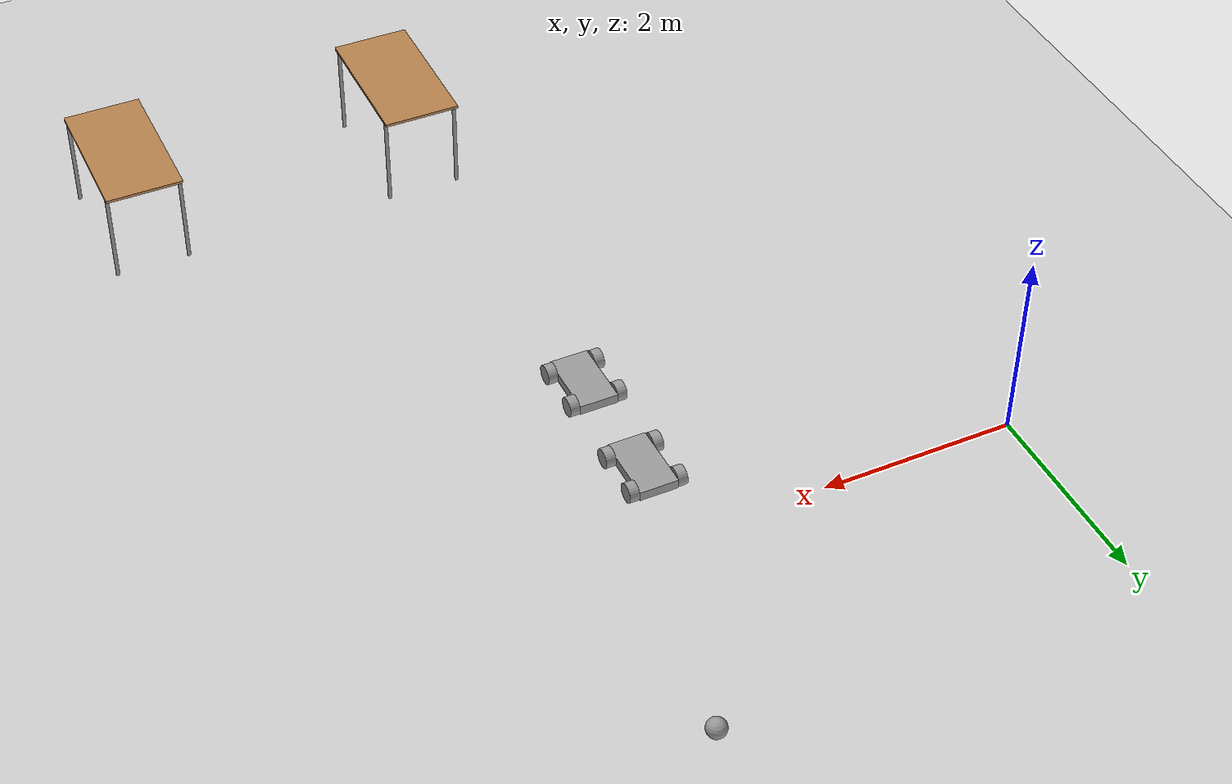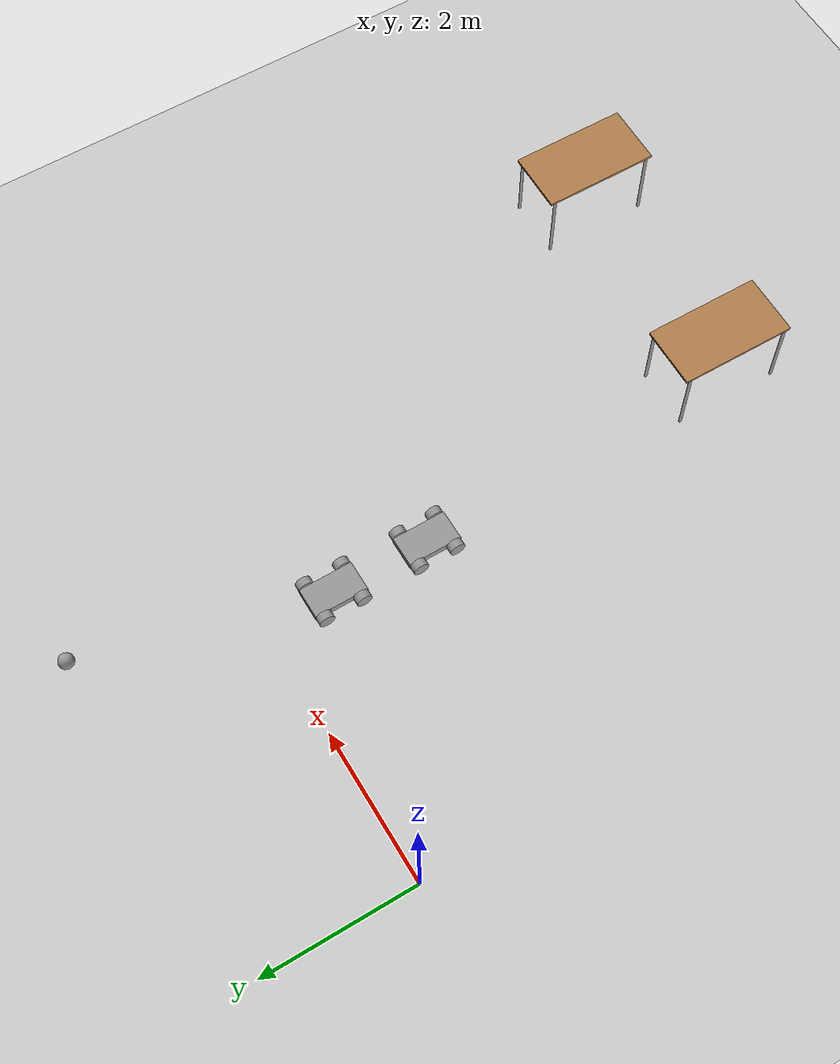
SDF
<sdf version="1.6">
 <world name="default">
  <model name="ground_plane">
   <static>1</static>
   <link name="link">
    <collision name="collision">
     <geometry><plane><normal>0 0 1</normal><size>100 100</size></plane></geometry>
     <surface><friction><ode><mu>100</mu><mu2>50</mu2></ode></friction></surface>
    </collision>
    <visual name="visual">
     <cast_shadows>0</cast_shadows>
     <geometry><plane><normal>0 0 1</normal><size>100 100</size></plane></geometry>
     <material>
      <script><uri>file://media/materials/scripts/gazebo.material</uri><name>Gazebo/Grey</name></script>
     </material>
    </visual>
   </link>
  </model>
  <model name="Robot">
   <link name="link_0">
    <inertial>
     <mass>1</mass>
     <inertia>
      <ixx>0.166667</ixx>
      <ixy>0</ixy>
      <ixz>0</ixz>
      <iyy>0.166667</iyy>
      <iyz>0</iyz>
      <izz>0.166667</izz>
     </inertia>
    </inertial>
    <visual name="visual">
     <geometry><box><size>0.4 0.7 0.1</size></box></geometry>
     <material>
      <lighting>1</lighting>
      <script><uri>file://media/materials/scripts/gazebo.material</uri><name>Gazebo/Grey</name></script>
      <shader type="pixel"><normal_map>__default__</normal_map></shader>
      <ambient>0.3 0.3 0.3 1</ambient>
      <diffuse>0.7 0.7 0.7 1</diffuse>
      <specular>0.01 0.01 0.01 1</specular>
      <emissive>0 0 0 1</emissive>
     </material>
    </visual>
    <collision name="collision">
     <geometry><box><size>0.4 0.7 0.1</size></box></geometry>
     <surface>
      <friction>
       <ode><mu>1</mu><mu2>1</mu2><fdir1>0 0 0</fdir1><slip1>0</slip1><slip2>0</slip2></ode>
       <torsional>
        <coefficient>1</coefficient>
        <patch_radius>0</patch_radius>
        <surface_radius>0</surface_radius>
        <use_patch_radius>1</use_patch_radius>
        <ode><slip>0</slip></ode>
       </torsional>
      </friction>
      <bounce><restitution_coefficient>0</restitution_coefficient><threshold>1e+06</threshold></bounce>
      <contact>
       <collide_without_contact>0</collide_without_contact>
       <collide_without_contact_bitmask>1</collide_without_contact_bitmask>
       <collide_bitmask>1</collide_bitmask>
       <ode>
        <soft_cfm>0</soft_cfm>
        <soft_erp>0.2</soft_erp>
        <kp>1e+13</kp>
        <kd>1</kd>
        <max_vel>0.01</max_vel>
        <min_depth>0</min_depth>
       </ode>
       <bullet>
        <split_impulse>1</split_impulse>
        <split_impulse_penetration_threshold>-0.01</split_impulse_penetration_threshold>
        <soft_cfm>0</soft_cfm>
        <soft_erp>0.2</soft_erp>
        <kp>1e+13</kp>
        <kd>1</kd>
       </bullet>
      </contact>
     </surface>
    </collision>
   </link>
   <link name="link_1">
    <pose>0.25 -0.25 0 0 -0 0</pose>
    <inertial>
     <mass>1</mass>
     <inertia><ixx>0.145833</ixx><ixy>0</ixy><ixz>0</ixz><iyy>0.145833</iyy><iyz>0</iyz><izz>0.125</izz></inertia>
    </inertial>
    <visual name="visual">
     <pose>0 0 0 3.14159 1.57079 3.14159</pose>
     <geometry><cylinder><radius>0.1</radius><length>0.1</length></cylinder></geometry>
     <material>
      <lighting>1</lighting>
      <script><uri>file://media/materials/scripts/gazebo.material</uri><name>Gazebo/Grey</name></script>
      <shader type="pixel"><normal_map>__default__</normal_map></shader>
      <ambient>0.3 0.3 0.3 1</ambient>
      <diffuse>0.7 0.7 0.7 1</diffuse>
      <specular>0.01 0.01 0.01 1</specular>
      <emissive>0 0 0 1</emissive>
     </material>
    </visual>
    <collision name="collision">
     <pose>0 0 0 3.14159 1.57079 3.14159</pose>
     <geometry><cylinder><radius>0.1</radius><length>0.1</length></cylinder></geometry>
     <surface>
      <friction>
       <ode><mu>1</mu><mu2>1</mu2><fdir1>0 0 0</fdir1><slip1>0</slip1><slip2>0</slip2></ode>
       <torsional>
        <coefficient>1</coefficient>
        <patch_radius>0</patch_radius>
        <surface_radius>0</surface_radius>
        <use_patch_radius>1</use_patch_radius>
        <ode><slip>0</slip></ode>
       </torsional>
      </friction>
      <bounce><restitution_coefficient>0</restitution_coefficient><threshold>1e+06</threshold></bounce>
      <contact>
       <collide_without_contact>0</collide_without_contact>
       <collide_without_contact_bitmask>1</collide_without_contact_bitmask>
       <collide_bitmask>1</collide_bitmask>
       <ode>
        <soft_cfm>0</soft_cfm>
        <soft_erp>0.2</soft_erp>
        <kp>1e+13</kp>
        <kd>1</kd>
        <max_vel>0.01</max_vel>
        <min_depth>0</min_depth>
       </ode>
       <bullet>
        <split_impulse>1</split_impulse>
        <split_impulse_penetration_threshold>-0.01</split_impulse_penetration_threshold>
        <soft_cfm>0</soft_cfm>
        <soft_erp>0.2</soft_erp>
        <kp>1e+13</kp>
        <kd>1</kd>
       </bullet>
      </contact>
     </surface>
    </collision>
   </link>
   <link name="link_1_clone">
    <pose>0.25 0.25 0 0 -0 0</pose>
    <inertial>
     <mass>1</mass>
     <inertia><ixx>0.145833</ixx><ixy>0</ixy><ixz>0</ixz><iyy>0.145833</iyy><iyz>0</iyz><izz>0.125</izz></inertia>
    </inertial>
    <visual name="visual">
     <pose>0 0 0 3.14159 1.57079 3.14159</pose>
     <geometry><cylinder><radius>0.1</radius><length>0.1</length></cylinder></geometry>
     <material>
      <lighting>1</lighting>
      <script><uri>file://media/materials/scripts/gazebo.material</uri><name>Gazebo/Grey</name></script>
      <shader type="pixel"><normal_map>__default__</normal_map></shader>
      <ambient>0.3 0.3 0.3 1</ambient>
      <diffuse>0.7 0.7 0.7 1</diffuse>
      <specular>0.01 0.01 0.01 1</specular>
      <emissive>0 0 0 1</emissive>
     </material>
    </visual>
    <collision name="collision">
     <pose>0 0 0 3.14159 1.57079 3.14159</pose>
     <geometry><cylinder><radius>0.1</radius><length>0.1</length></cylinder></geometry>
     <surface>
      <friction>
       <ode><mu>1</mu><mu2>1</mu2><fdir1>0 0 0</fdir1><slip1>0</slip1><slip2>0</slip2></ode>
       <torsional>
        <coefficient>1</coefficient>
        <patch_radius>0</patch_radius>
        <surface_radius>0</surface_radius>
        <use_patch_radius>1</use_patch_radius>
        <ode><slip>0</slip></ode>
       </torsional>
      </friction>
      <bounce><restitution_coefficient>0</restitution_coefficient><threshold>1e+06</threshold></bounce>
      <contact>
       <collide_without_contact>0</collide_without_contact>
       <collide_without_contact_bitmask>1</collide_without_contact_bitmask>
       <collide_bitmask>1</collide_bitmask>
       <ode>
        <soft_cfm>0</soft_cfm>
        <soft_erp>0.2</soft_erp>
        <kp>1e+13</kp>
        <kd>1</kd>
        <max_vel>0.01</max_vel>
        <min_depth>0</min_depth>
       </ode>
       <bullet>
        <split_impulse>1</split_impulse>
        <split_impulse_penetration_threshold>-0.01</split_impulse_penetration_threshold>
        <soft_cfm>0</soft_cfm>
        <soft_erp>0.2</soft_erp>
        <kp>1e+13</kp>
        <kd>1</kd>
       </bullet>
      </contact>
     </surface>
    </collision>
   </link>
   <link name="link_1_clone_0">
    <pose>-0.250001 -0.25 0 0 -0 0</pose>
    <inertial>
     <mass>1</mass>
     <inertia><ixx>0.145833</ixx><ixy>0</ixy><ixz>0</ixz><iyy>0.145833</iyy><iyz>0</iyz><izz>0.125</izz></inertia>
    </inertial>
    <visual name="visual">
     <pose>0 0 0 3.14159 1.57079 3.14159</pose>
     <geometry><cylinder><radius>0.1</radius><length>0.1</length></cylinder></geometry>
     <material>
      <lighting>1</lighting>
      <script><uri>file://media/materials/scripts/gazebo.material</uri><name>Gazebo/Grey</name></script>
      <shader type="pixel"><normal_map>__default__</normal_map></shader>
      <ambient>0.3 0.3 0.3 1</ambient>
      <diffuse>0.7 0.7 0.7 1</diffuse>
      <specular>0.01 0.01 0.01 1</specular>
      <emissive>0 0 0 1</emissive>
     </material>
    </visual>
    <collision name="collision">
     <pose>0 0 0 3.14159 1.57079 3.14159</pose>
     <geometry><cylinder><radius>0.1</radius><length>0.1</length></cylinder></geometry>
     <surface>
      <friction>
       <ode><mu>1</mu><mu2>1</mu2><fdir1>0 0 0</fdir1><slip1>0</slip1><slip2>0</slip2></ode>
       <torsional>
        <coefficient>1</coefficient>
        <patch_radius>0</patch_radius>
        <surface_radius>0</surface_radius>
        <use_patch_radius>1</use_patch_radius>
        <ode><slip>0</slip></ode>
       </torsional>
      </friction>
      <bounce><restitution_coefficient>0</restitution_coefficient><threshold>1e+06</threshold></bounce>
      <contact>
       <collide_without_contact>0</collide_without_contact>
       <collide_without_contact_bitmask>1</collide_without_contact_bitmask>
       <collide_bitmask>1</collide_bitmask>
       <ode>
        <soft_cfm>0</soft_cfm>
        <soft_erp>0.2</soft_erp>
        <kp>1e+13</kp>
        <kd>1</kd>
        <max_vel>0.01</max_vel>
        <min_depth>0</min_depth>
       </ode>
       <bullet>
        <split_impulse>1</split_impulse>
        <split_impulse_penetration_threshold>-0.01</split_impulse_penetration_threshold>
        <soft_cfm>0</soft_cfm>
        <soft_erp>0.2</soft_erp>
        <kp>1e+13</kp>
        <kd>1</kd>
       </bullet>
      </contact>
     </surface>
    </collision>
   </link>
   <link name="link_1_clone_1">
    <pose>-0.250001 0.25 0 0 -0 0</pose>
    <inertial>
     <mass>1</mass>
     <inertia><ixx>0.145833</ixx><ixy>0</ixy><ixz>0</ixz><iyy>0.145833</iyy><iyz>0</iyz><izz>0.125</izz></inertia>
    </inertial>
    <visual name="visual">
     <pose>0 0 0 3.14159 1.57079 3.14159</pose>
     <geometry><cylinder><radius>0.1</radius><length>0.1</length></cylinder></geometry>
     <material>
      <lighting>1</lighting>
      <script><uri>file://media/materials/scripts/gazebo.material</uri><name>Gazebo/Grey</name></script>
      <shader type="pixel"><normal_map>__default__</normal_map></shader>
      <ambient>0.3 0.3 0.3 1</ambient>
      <diffuse>0.7 0.7 0.7 1</diffuse>
      <specular>0.01 0.01 0.01 1</specular>
      <emissive>0 0 0 1</emissive>
     </material>
    </visual>
    <collision name="collision">
     <pose>0 0 0 3.14159 1.57079 3.14159</pose>
     <geometry><cylinder><radius>0.1</radius><length>0.1</length></cylinder></geometry>
     <surface>
      <friction>
       <ode><mu>1</mu><mu2>1</mu2><fdir1>0 0 0</fdir1><slip1>0</slip1><slip2>0</slip2></ode>
       <torsional>
        <coefficient>1</coefficient>
        <patch_radius>0</patch_radius>
        <surface_radius>0</surface_radius>
        <use_patch_radius>1</use_patch_radius>
        <ode><slip>0</slip></ode>
       </torsional>
      </friction>
      <bounce><restitution_coefficient>0</restitution_coefficient><threshold>1e+06</threshold></bounce>
      <contact>
       <collide_without_contact>0</collide_without_contact>
       <collide_without_contact_bitmask>1</collide_without_contact_bitmask>
       <collide_bitmask>1</collide_bitmask>
       <ode>
        <soft_cfm>0</soft_cfm>
        <soft_erp>0.2</soft_erp>
        <kp>1e+13</kp>
        <kd>1</kd>
        <max_vel>0.01</max_vel>
        <min_depth>0</min_depth>
       </ode>
       <bullet>
        <split_impulse>1</split_impulse>
        <split_impulse_penetration_threshold>-0.01</split_impulse_penetration_threshold>
        <soft_cfm>0</soft_cfm>
        <soft_erp>0.2</soft_erp>
        <kp>1e+13</kp>
        <kd>1</kd>
       </bullet>
      </contact>
     </surface>
    </collision>
   </link>
   <joint name="link_0_JOINT_0" type="revolute">
    <parent>link_0</parent>
    <child>link_1_clone</child>
    <axis>
     <xyz>1 0 0</xyz>
     <use_parent_model_frame>0</use_parent_model_frame>
     <limit>
      <lower>-1.79769e+308</lower>
      <upper>1.79769e+308</upper>
      <effort>-1</effort>
      <velocity>-1</velocity>
     </limit>
     <dynamics>
      <spring_reference>0</spring_reference>
      <spring_stiffness>0</spring_stiffness>
      <damping>0</damping>
     </dynamics>
    </axis>
    <physics>
     <ode><limit><cfm>0</cfm><erp>0.2</erp></limit><suspension><cfm>0</cfm><erp>0.2</erp></suspension></ode>
    </physics>
   </joint>
   <joint name="link_0_JOINT_1" type="revolute">
    <parent>link_0</parent>
    <child>link_1_clone_1</child>
    <axis>
     <xyz>1 0 0</xyz>
     <use_parent_model_frame>0</use_parent_model_frame>
     <limit>
      <lower>-1.79769e+308</lower>
      <upper>1.79769e+308</upper>
      <effort>-1</effort>
      <velocity>-1</velocity>
     </limit>
     <dynamics>
      <spring_reference>0</spring_reference>
      <spring_stiffness>0</spring_stiffness>
      <damping>0</damping>
     </dynamics>
    </axis>
    <physics>
     <ode><limit><cfm>0</cfm><erp>0.2</erp></limit><suspension><cfm>0</cfm><erp>0.2</erp></suspension></ode>
    </physics>
   </joint>
   <joint name="link_0_JOINT_2" type="revolute">
    <parent>link_0</parent>
    <child>link_1</child>
    <axis>
     <xyz>1 0 0</xyz>
     <use_parent_model_frame>0</use_parent_model_frame>
     <limit>
      <lower>-1.79769e+308</lower>
      <upper>1.79769e+308</upper>
      <effort>-1</effort>
      <velocity>-1</velocity>
     </limit>
     <dynamics>
      <spring_reference>0</spring_reference>
      <spring_stiffness>0</spring_stiffness>
      <damping>0</damping>
     </dynamics>
    </axis>
    <physics>
     <ode><limit><cfm>0</cfm><erp>0.2</erp></limit><suspension><cfm>0</cfm><erp>0.2</erp></suspension></ode>
    </physics>
   </joint>
   <joint name="link_0_JOINT_3" type="revolute">
    <parent>link_0</parent>
    <child>link_1_clone_0</child>
    <axis>
     <xyz>1 0 0</xyz>
     <use_parent_model_frame>0</use_parent_model_frame>
     <limit>
      <lower>-1.79769e+308</lower>
      <upper>1.79769e+308</upper>
      <effort>-1</effort>
      <velocity>-1</velocity>
     </limit>
     <dynamics>
      <spring_reference>0</spring_reference>
      <spring_stiffness>0</spring_stiffness>
      <damping>0</damping>
     </dynamics>
    </axis>
    <physics>
     <ode><limit><cfm>0</cfm><erp>0.2</erp></limit><suspension><cfm>0</cfm><erp>0.2</erp></suspension></ode>
    </physics>
   </joint>
   <static>0</static>
   <pose>3.47069 -2.16442 0.099998 1e-05 -0 0.004193</pose>
  </model>
  <model name="table">
   <static>1</static>
   <link name="link">
    <collision name="surface">
     <pose>0 0 1 0 -0 0</pose>
     <geometry><box><size>1.5 0.8 0.03</size></box></geometry>
     <surface><friction><ode><mu>0.6</mu><mu2>0.6</mu2></ode></friction></surface>
    </collision>
    <visual name="visual1">
     <pose>0 0 1 0 -0 0</pose>
     <geometry><box><size>1.5 0.8 0.03</size></box></geometry>
     <material>
      <script><uri>file://media/materials/scripts/gazebo.material</uri><name>Gazebo/Wood</name></script>
     </material>
    </visual>
    <collision name="front_left_leg">
     <pose>0.68 0.38 0.5 0 -0 0</pose>
     <geometry><cylinder><radius>0.02</radius><length>1</length></cylinder></geometry>
    </collision>
    <visual name="front_left_leg">
     <pose>0.68 0.38 0.5 0 -0 0</pose>
     <geometry><cylinder><radius>0.02</radius><length>1</length></cylinder></geometry>
     <material>
      <script><uri>file://media/materials/scripts/gazebo.material</uri><name>Gazebo/Grey</name></script>
     </material>
    </visual>
    <collision name="front_right_leg">
     <pose>0.68 -0.38 0.5 0 -0 0</pose>
     <geometry><cylinder><radius>0.02</radius><length>1</length></cylinder></geometry>
    </collision>
    <visual name="front_right_leg">
     <pose>0.68 -0.38 0.5 0 -0 0</pose>
     <geometry><cylinder><radius>0.02</radius><length>1</length></cylinder></geometry>
     <material>
      <script><uri>file://media/materials/scripts/gazebo.material</uri><name>Gazebo/Grey</name></script>
     </material>
    </visual>
    <collision name="back_right_leg">
     <pose>-0.68 -0.38 0.5 0 -0 0</pose>
     <geometry><cylinder><radius>0.02</radius><length>1</length></cylinder></geometry>
    </collision>
    <visual name="back_right_leg">
     <pose>-0.68 -0.38 0.5 0 -0 0</pose>
     <geometry><cylinder><radius>0.02</radius><length>1</length></cylinder></geometry>
     <material>
      <script><uri>file://media/materials/scripts/gazebo.material</uri><name>Gazebo/Grey</name></script>
     </material>
    </visual>
    <collision name="back_left_leg">
     <pose>-0.68 0.38 0.5 0 -0 0</pose>
     <geometry><cylinder><radius>0.02</radius><length>1</length></cylinder></geometry>
    </collision>
    <visual name="back_left_leg">
     <pose>-0.68 0.38 0.5 0 -0 0</pose>
     <geometry><cylinder><radius>0.02</radius><length>1</length></cylinder></geometry>
     <material>
      <script><uri>file://media/materials/scripts/gazebo.material</uri><name>Gazebo/Grey</name></script>
     </material>
    </visual>
   </link>
   <pose>3.67774 -6.38661 0 0 -0 1.56186</pose>
  </model>
  <model name="table_clone_1">
   <static>1</static>
   <link name="link">
    <collision name="surface">
     <pose>0 0 1 0 -0 0</pose>
     <geometry><box><size>1.5 0.8 0.03</size></box></geometry>
     <surface><friction><ode><mu>0.6</mu><mu2>0.6</mu2></ode></friction></surface>
    </collision>
    <visual name="visual1">
     <pose>0 0 1 0 -0 0</pose>
     <geometry><box><size>1.5 0.8 0.03</size></box></geometry>
     <material>
      <script><uri>file://media/materials/scripts/gazebo.material</uri><name>Gazebo/Wood</name></script>
     </material>
    </visual>
    <collision name="front_left_leg">
     <pose>0.68 0.38 0.5 0 -0 0</pose>
     <geometry><cylinder><radius>0.02</radius><length>1</length></cylinder></geometry>
    </collision>
    <visual name="front_left_leg">
     <pose>0.68 0.38 0.5 0 -0 0</pose>
     <geometry><cylinder><radius>0.02</radius><length>1</length></cylinder></geometry>
     <material>
      <script><uri>file://media/materials/scripts/gazebo.material</uri><name>Gazebo/Grey</name></script>
     </material>
    </visual>
    <collision name="front_right_leg">
     <pose>0.68 -0.38 0.5 0 -0 0</pose>
     <geometry><cylinder><radius>0.02</radius><length>1</length></cylinder></geometry>
    </collision>
    <visual name="front_right_leg">
     <pose>0.68 -0.38 0.5 0 -0 0</pose>
     <geometry><cylinder><radius>0.02</radius><length>1</length></cylinder></geometry>
     <material>
      <script><uri>file://media/materials/scripts/gazebo.material</uri><name>Gazebo/Grey</name></script>
     </material>
    </visual>
    <collision name="back_right_leg">
     <pose>-0.68 -0.38 0.5 0 -0 0</pose>
     <geometry><cylinder><radius>0.02</radius><length>1</length></cylinder></geometry>
    </collision>
    <visual name="back_right_leg">
     <pose>-0.68 -0.38 0.5 0 -0 0</pose>
     <geometry><cylinder><radius>0.02</radius><length>1</length></cylinder></geometry>
     <material>
      <script><uri>file://media/materials/scripts/gazebo.material</uri><name>Gazebo/Grey</name></script>
     </material>
    </visual>
    <collision name="back_left_leg">
     <pose>-0.68 0.38 0.5 0 -0 0</pose>
     <geometry><cylinder><radius>0.02</radius><length>1</length></cylinder></geometry>
    </collision>
    <visual name="back_left_leg">
     <pose>-0.68 0.38 0.5 0 -0 0</pose>
     <geometry><cylinder><radius>0.02</radius><length>1</length></cylinder></geometry>
     <material>
      <script><uri>file://media/materials/scripts/gazebo.material</uri><name>Gazebo/Grey</name></script>
     </material>
    </visual>
   </link>
   <pose>6.66638 -6.40439 0 0 -0 1.56186</pose>
  </model>
  <model name="Robot_clone">
   <link name="link_0">
    <inertial>
     <mass>1</mass>
     <inertia>
      <ixx>0.166667</ixx>
      <ixy>0</ixy>
      <ixz>0</ixz>
      <iyy>0.166667</iyy>
      <iyz>0</iyz>
      <izz>0.166667</izz>
     </inertia>
    </inertial>
    <visual name="visual">
     <geometry><box><size>0.4 0.7 0.1</size></box></geometry>
     <material>
      <lighting>1</lighting>
      <script><uri>file://media/materials/scripts/gazebo.material</uri><name>Gazebo/Grey</name></script>
      <shader type="pixel"><normal_map>__default__</normal_map></shader>
      <ambient>0.3 0.3 0.3 1</ambient>
      <diffuse>0.7 0.7 0.7 1</diffuse>
      <specular>0.01 0.01 0.01 1</specular>
      <emissive>0 0 0 1</emissive>
     </material>
    </visual>
    <collision name="collision">
     <geometry><box><size>0.4 0.7 0.1</size></box></geometry>
     <surface>
      <friction>
       <ode><mu>1</mu><mu2>1</mu2><fdir1>0 0 0</fdir1><slip1>0</slip1><slip2>0</slip2></ode>
       <torsional>
        <coefficient>1</coefficient>
        <patch_radius>0</patch_radius>
        <surface_radius>0</surface_radius>
        <use_patch_radius>1</use_patch_radius>
        <ode><slip>0</slip></ode>
       </torsional>
      </friction>
      <bounce><restitution_coefficient>0</restitution_coefficient><threshold>1e+06</threshold></bounce>
      <contact>
       <collide_without_contact>0</collide_without_contact>
       <collide_without_contact_bitmask>1</collide_without_contact_bitmask>
       <collide_bitmask>1</collide_bitmask>
       <ode>
        <soft_cfm>0</soft_cfm>
        <soft_erp>0.2</soft_erp>
        <kp>1e+13</kp>
        <kd>1</kd>
        <max_vel>0.01</max_vel>
        <min_depth>0</min_depth>
       </ode>
       <bullet>
        <split_impulse>1</split_impulse>
        <split_impulse_penetration_threshold>-0.01</split_impulse_penetration_threshold>
        <soft_cfm>0</soft_cfm>
        <soft_erp>0.2</soft_erp>
        <kp>1e+13</kp>
        <kd>1</kd>
       </bullet>
      </contact>
     </surface>
    </collision>
   </link>
   <link name="link_1">
    <pose>0.25 -0.25 0 0 -0 0</pose>
    <inertial>
     <mass>1</mass>
     <inertia><ixx>0.145833</ixx><ixy>0</ixy><ixz>0</ixz><iyy>0.145833</iyy><iyz>0</iyz><izz>0.125</izz></inertia>
    </inertial>
    <visual name="visual">
     <pose>0 0 0 3.14159 1.57079 3.14159</pose>
     <geometry><cylinder><radius>0.1</radius><length>0.1</length></cylinder></geometry>
     <material>
      <lighting>1</lighting>
      <script><uri>file://media/materials/scripts/gazebo.material</uri><name>Gazebo/Grey</name></script>
      <shader type="pixel"><normal_map>__default__</normal_map></shader>
      <ambient>0.3 0.3 0.3 1</ambient>
      <diffuse>0.7 0.7 0.7 1</diffuse>
      <specular>0.01 0.01 0.01 1</specular>
      <emissive>0 0 0 1</emissive>
     </material>
    </visual>
    <collision name="collision">
     <pose>0 0 0 3.14159 1.57079 3.14159</pose>
     <geometry><cylinder><radius>0.1</radius><length>0.1</length></cylinder></geometry>
     <surface>
      <friction>
       <ode><mu>1</mu><mu2>1</mu2><fdir1>0 0 0</fdir1><slip1>0</slip1><slip2>0</slip2></ode>
       <torsional>
        <coefficient>1</coefficient>
        <patch_radius>0</patch_radius>
        <surface_radius>0</surface_radius>
        <use_patch_radius>1</use_patch_radius>
        <ode><slip>0</slip></ode>
       </torsional>
      </friction>
      <bounce><restitution_coefficient>0</restitution_coefficient><threshold>1e+06</threshold></bounce>
      <contact>
       <collide_without_contact>0</collide_without_contact>
       <collide_without_contact_bitmask>1</collide_without_contact_bitmask>
       <collide_bitmask>1</collide_bitmask>
       <ode>
        <soft_cfm>0</soft_cfm>
        <soft_erp>0.2</soft_erp>
        <kp>1e+13</kp>
        <kd>1</kd>
        <max_vel>0.01</max_vel>
        <min_depth>0</min_depth>
       </ode>
       <bullet>
        <split_impulse>1</split_impulse>
        <split_impulse_penetration_threshold>-0.01</split_impulse_penetration_threshold>
        <soft_cfm>0</soft_cfm>
        <soft_erp>0.2</soft_erp>
        <kp>1e+13</kp>
        <kd>1</kd>
       </bullet>
      </contact>
     </surface>
    </collision>
   </link>
   <link name="link_1_clone">
    <pose>0.25 0.25 0 0 -0 0</pose>
    <inertial>
     <mass>1</mass>
     <inertia><ixx>0.145833</ixx><ixy>0</ixy><ixz>0</ixz><iyy>0.145833</iyy><iyz>0</iyz><izz>0.125</izz></inertia>
    </inertial>
    <visual name="visual">
     <pose>0 0 0 3.14159 1.57079 3.14159</pose>
     <geometry><cylinder><radius>0.1</radius><length>0.1</length></cylinder></geometry>
     <material>
      <lighting>1</lighting>
      <script><uri>file://media/materials/scripts/gazebo.material</uri><name>Gazebo/Grey</name></script>
      <shader type="pixel"><normal_map>__default__</normal_map></shader>
      <ambient>0.3 0.3 0.3 1</ambient>
      <diffuse>0.7 0.7 0.7 1</diffuse>
      <specular>0.01 0.01 0.01 1</specular>
      <emissive>0 0 0 1</emissive>
     </material>
    </visual>
    <collision name="collision">
     <pose>0 0 0 3.14159 1.57079 3.14159</pose>
     <geometry><cylinder><radius>0.1</radius><length>0.1</length></cylinder></geometry>
     <surface>
      <friction>
       <ode><mu>1</mu><mu2>1</mu2><fdir1>0 0 0</fdir1><slip1>0</slip1><slip2>0</slip2></ode>
       <torsional>
        <coefficient>1</coefficient>
        <patch_radius>0</patch_radius>
        <surface_radius>0</surface_radius>
        <use_patch_radius>1</use_patch_radius>
        <ode><slip>0</slip></ode>
       </torsional>
      </friction>
      <bounce><restitution_coefficient>0</restitution_coefficient><threshold>1e+06</threshold></bounce>
      <contact>
       <collide_without_contact>0</collide_without_contact>
       <collide_without_contact_bitmask>1</collide_without_contact_bitmask>
       <collide_bitmask>1</collide_bitmask>
       <ode>
        <soft_cfm>0</soft_cfm>
        <soft_erp>0.2</soft_erp>
        <kp>1e+13</kp>
        <kd>1</kd>
        <max_vel>0.01</max_vel>
        <min_depth>0</min_depth>
       </ode>
       <bullet>
        <split_impulse>1</split_impulse>
        <split_impulse_penetration_threshold>-0.01</split_impulse_penetration_threshold>
        <soft_cfm>0</soft_cfm>
        <soft_erp>0.2</soft_erp>
        <kp>1e+13</kp>
        <kd>1</kd>
       </bullet>
      </contact>
     </surface>
    </collision>
   </link>
   <link name="link_1_clone_0">
    <pose>-0.250001 -0.25 0 0 -0 0</pose>
    <inertial>
     <mass>1</mass>
     <inertia><ixx>0.145833</ixx><ixy>0</ixy><ixz>0</ixz><iyy>0.145833</iyy><iyz>0</iyz><izz>0.125</izz></inertia>
    </inertial>
    <visual name="visual">
     <pose>0 0 0 3.14159 1.57079 3.14159</pose>
     <geometry><cylinder><radius>0.1</radius><length>0.1</length></cylinder></geometry>
     <material>
      <lighting>1</lighting>
      <script><uri>file://media/materials/scripts/gazebo.material</uri><name>Gazebo/Grey</name></script>
      <shader type="pixel"><normal_map>__default__</normal_map></shader>
      <ambient>0.3 0.3 0.3 1</ambient>
      <diffuse>0.7 0.7 0.7 1</diffuse>
      <specular>0.01 0.01 0.01 1</specular>
      <emissive>0 0 0 1</emissive>
     </material>
    </visual>
    <collision name="collision">
     <pose>0 0 0 3.14159 1.57079 3.14159</pose>
     <geometry><cylinder><radius>0.1</radius><length>0.1</length></cylinder></geometry>
     <surface>
      <friction>
       <ode><mu>1</mu><mu2>1</mu2><fdir1>0 0 0</fdir1><slip1>0</slip1><slip2>0</slip2></ode>
       <torsional>
        <coefficient>1</coefficient>
        <patch_radius>0</patch_radius>
        <surface_radius>0</surface_radius>
        <use_patch_radius>1</use_patch_radius>
        <ode><slip>0</slip></ode>
       </torsional>
      </friction>
      <bounce><restitution_coefficient>0</restitution_coefficient><threshold>1e+06</threshold></bounce>
      <contact>
       <collide_without_contact>0</collide_without_contact>
       <collide_without_contact_bitmask>1</collide_without_contact_bitmask>
       <collide_bitmask>1</collide_bitmask>
       <ode>
        <soft_cfm>0</soft_cfm>
        <soft_erp>0.2</soft_erp>
        <kp>1e+13</kp>
        <kd>1</kd>
        <max_vel>0.01</max_vel>
        <min_depth>0</min_depth>
       </ode>
       <bullet>
        <split_impulse>1</split_impulse>
        <split_impulse_penetration_threshold>-0.01</split_impulse_penetration_threshold>
        <soft_cfm>0</soft_cfm>
        <soft_erp>0.2</soft_erp>
        <kp>1e+13</kp>
        <kd>1</kd>
       </bullet>
      </contact>
     </surface>
    </collision>
   </link>
   <link name="link_1_clone_1">
    <pose>-0.250001 0.25 0 0 -0 0</pose>
    <inertial>
     <mass>1</mass>
     <inertia><ixx>0.145833</ixx><ixy>0</ixy><ixz>0</ixz><iyy>0.145833</iyy><iyz>0</iyz><izz>0.125</izz></inertia>
    </inertial>
    <visual name="visual">
     <pose>0 0 0 3.14159 1.57079 3.14159</pose>
     <geometry><cylinder><radius>0.1</radius><length>0.1</length></cylinder></geometry>
     <material>
      <lighting>1</lighting>
      <script><uri>file://media/materials/scripts/gazebo.material</uri><name>Gazebo/Grey</name></script>
      <shader type="pixel"><normal_map>__default__</normal_map></shader>
      <ambient>0.3 0.3 0.3 1</ambient>
      <diffuse>0.7 0.7 0.7 1</diffuse>
      <specular>0.01 0.01 0.01 1</specular>
      <emissive>0 0 0 1</emissive>
     </material>
    </visual>
    <collision name="collision">
     <pose>0 0 0 3.14159 1.57079 3.14159</pose>
     <geometry><cylinder><radius>0.1</radius><length>0.1</length></cylinder></geometry>
     <surface>
      <friction>
       <ode><mu>1</mu><mu2>1</mu2><fdir1>0 0 0</fdir1><slip1>0</slip1><slip2>0</slip2></ode>
       <torsional>
        <coefficient>1</coefficient>
        <patch_radius>0</patch_radius>
        <surface_radius>0</surface_radius>
        <use_patch_radius>1</use_patch_radius>
        <ode><slip>0</slip></ode>
       </torsional>
      </friction>
      <bounce><restitution_coefficient>0</restitution_coefficient><threshold>1e+06</threshold></bounce>
      <contact>
       <collide_without_contact>0</collide_without_contact>
       <collide_without_contact_bitmask>1</collide_without_contact_bitmask>
       <collide_bitmask>1</collide_bitmask>
       <ode>
        <soft_cfm>0</soft_cfm>
        <soft_erp>0.2</soft_erp>
        <kp>1e+13</kp>
        <kd>1</kd>
        <max_vel>0.01</max_vel>
        <min_depth>0</min_depth>
       </ode>
       <bullet>
        <split_impulse>1</split_impulse>
        <split_impulse_penetration_threshold>-0.01</split_impulse_penetration_threshold>
        <soft_cfm>0</soft_cfm>
        <soft_erp>0.2</soft_erp>
        <kp>1e+13</kp>
        <kd>1</kd>
       </bullet>
      </contact>
     </surface>
    </collision>
   </link>
   <joint name="link_0_JOINT_0" type="revolute">
    <parent>link_0</parent>
    <child>link_1_clone</child>
    <axis>
     <xyz>1 0 0</xyz>
     <use_parent_model_frame>0</use_parent_model_frame>
     <limit>
      <lower>-1.79769e+308</lower>
      <upper>1.79769e+308</upper>
      <effort>-1</effort>
      <velocity>-1</velocity>
     </limit>
     <dynamics>
      <spring_reference>0</spring_reference>
      <spring_stiffness>0</spring_stiffness>
      <damping>0</damping>
     </dynamics>
    </axis>
    <physics>
     <ode><limit><cfm>0</cfm><erp>0.2</erp></limit><suspension><cfm>0</cfm><erp>0.2</erp></suspension></ode>
    </physics>
   </joint>
   <joint name="link_0_JOINT_1" type="revolute">
    <parent>link_0</parent>
    <child>link_1_clone_1</child>
    <axis>
     <xyz>1 0 0</xyz>
     <use_parent_model_frame>0</use_parent_model_frame>
     <limit>
      <lower>-1.79769e+308</lower>
      <upper>1.79769e+308</upper>
      <effort>-1</effort>
      <velocity>-1</velocity>
     </limit>
     <dynamics>
      <spring_reference>0</spring_reference>
      <spring_stiffness>0</spring_stiffness>
      <damping>0</damping>
     </dynamics>
    </axis>
    <physics>
     <ode><limit><cfm>0</cfm><erp>0.2</erp></limit><suspension><cfm>0</cfm><erp>0.2</erp></suspension></ode>
    </physics>
   </joint>
   <joint name="link_0_JOINT_2" type="revolute">
    <parent>link_0</parent>
    <child>link_1</child>
    <axis>
     <xyz>1 0 0</xyz>
     <use_parent_model_frame>0</use_parent_model_frame>
     <limit>
      <lower>-1.79769e+308</lower>
      <upper>1.79769e+308</upper>
      <effort>-1</effort>
      <velocity>-1</velocity>
     </limit>
     <dynamics>
      <spring_reference>0</spring_reference>
      <spring_stiffness>0</spring_stiffness>
      <damping>0</damping>
     </dynamics>
    </axis>
    <physics>
     <ode><limit><cfm>0</cfm><erp>0.2</erp></limit><suspension><cfm>0</cfm><erp>0.2</erp></suspension></ode>
    </physics>
   </joint>
   <joint name="link_0_JOINT_3" type="revolute">
    <parent>link_0</parent>
    <child>link_1_clone_0</child>
    <axis>
     <xyz>1 0 0</xyz>
     <use_parent_model_frame>0</use_parent_model_frame>
     <limit>
      <lower>-1.79769e+308</lower>
      <upper>1.79769e+308</upper>
      <effort>-1</effort>
      <velocity>-1</velocity>
     </limit>
     <dynamics>
      <spring_reference>0</spring_reference>
      <spring_stiffness>0</spring_stiffness>
      <damping>0</damping>
     </dynamics>
    </axis>
    <physics>
     <ode><limit><cfm>0</cfm><erp>0.2</erp></limit><suspension><cfm>0</cfm><erp>0.2</erp></suspension></ode>
    </physics>
   </joint>
   <static>0</static>
   <pose>3.46165 -0.889849 0.099997 1.4e-05 -0 0.004157</pose>
  </model>
  <model name="my_ball">
   <link name="link_0">
    <inertial>
     <mass>1</mass>
     <inertia><ixx>0.1</ixx><ixy>0</ixy><ixz>0</ixz><iyy>0.1</iyy><iyz>0</iyz><izz>0.1</izz></inertia>
    </inertial>
    <visual name="visual">
     <geometry><sphere><radius>0.1</radius></sphere></geometry>
     <material>
      <lighting>1</lighting>
      <script><uri>file://media/materials/scripts/gazebo.material</uri><name>Gazebo/Grey</name></script>
      <shader type="pixel"><normal_map>__default__</normal_map></shader>
      <ambient>1 1 1 1</ambient>
      <diffuse>1 1 1 1</diffuse>
      <specular>1 1 1 1</specular>
      <emissive>1 1 1 1</emissive>
     </material>
    </visual>
    <collision name="collision">
     <geometry><sphere><radius>0.1</radius></sphere></geometry>
     <surface>
      <friction>
       <ode><mu>1</mu><mu2>1</mu2><fdir1>0 0 0</fdir1><slip1>0</slip1><slip2>0</slip2></ode>
       <torsional>
        <coefficient>1</coefficient>
        <patch_radius>0</patch_radius>
        <surface_radius>0</surface_radius>
        <use_patch_radius>1</use_patch_radius>
        <ode><slip>0</slip></ode>
       </torsional>
      </friction>
      <bounce><restitution_coefficient>0</restitution_coefficient><threshold>1e+06</threshold></bounce>
      <contact>
       <collide_without_contact>0</collide_without_contact>
       <collide_without_contact_bitmask>1</collide_without_contact_bitmask>
       <collide_bitmask>1</collide_bitmask>
       <ode>
        <soft_cfm>0</soft_cfm>
        <soft_erp>0.2</soft_erp>
        <kp>1e+13</kp>
        <kd>1</kd>
        <max_vel>0.01</max_vel>
        <min_depth>0</min_depth>
       </ode>
       <bullet>
        <split_impulse>1</split_impulse>
        <split_impulse_penetration_threshold>-0.01</split_impulse_penetration_threshold>
        <soft_cfm>0</soft_cfm>
        <soft_erp>0.2</soft_erp>
        <kp>1e+13</kp>
        <kd>1</kd>
       </bullet>
      </contact>
     </surface>
    </collision>
   </link>
   <static>0</static>
   <pose>4.2739 2.16988 0.1 0 -0 0</pose>
  </model>
 </world>
</sdf>
